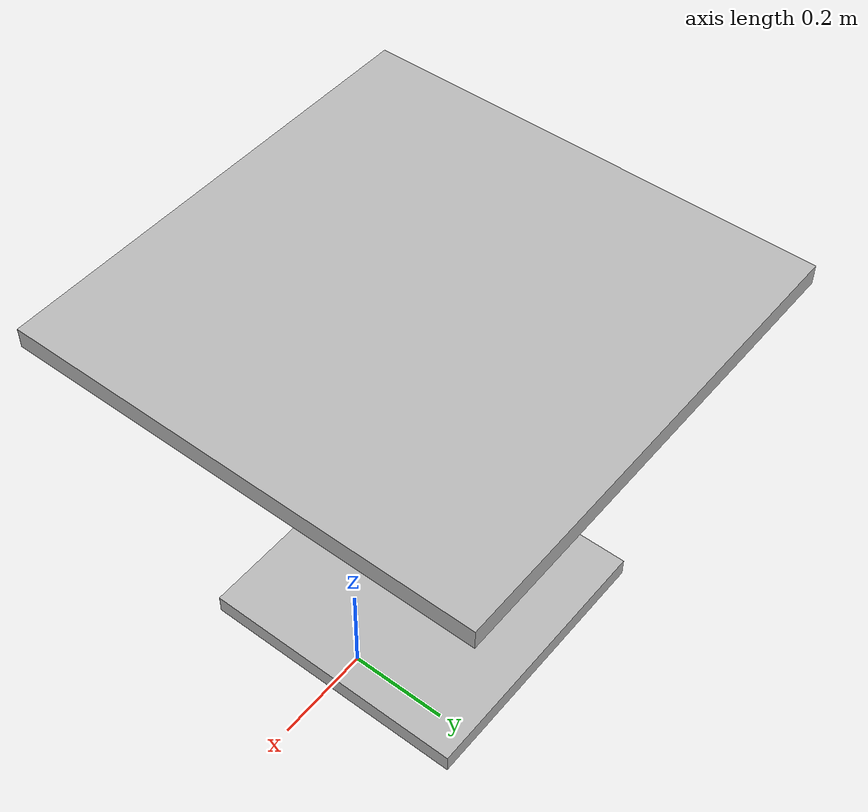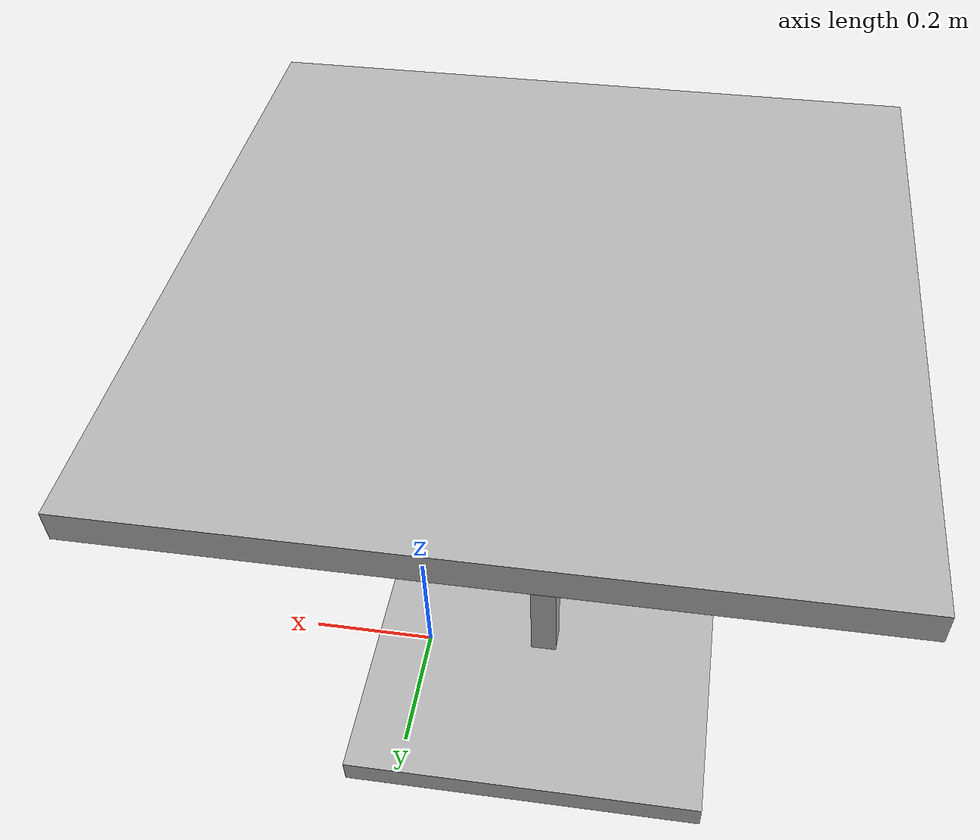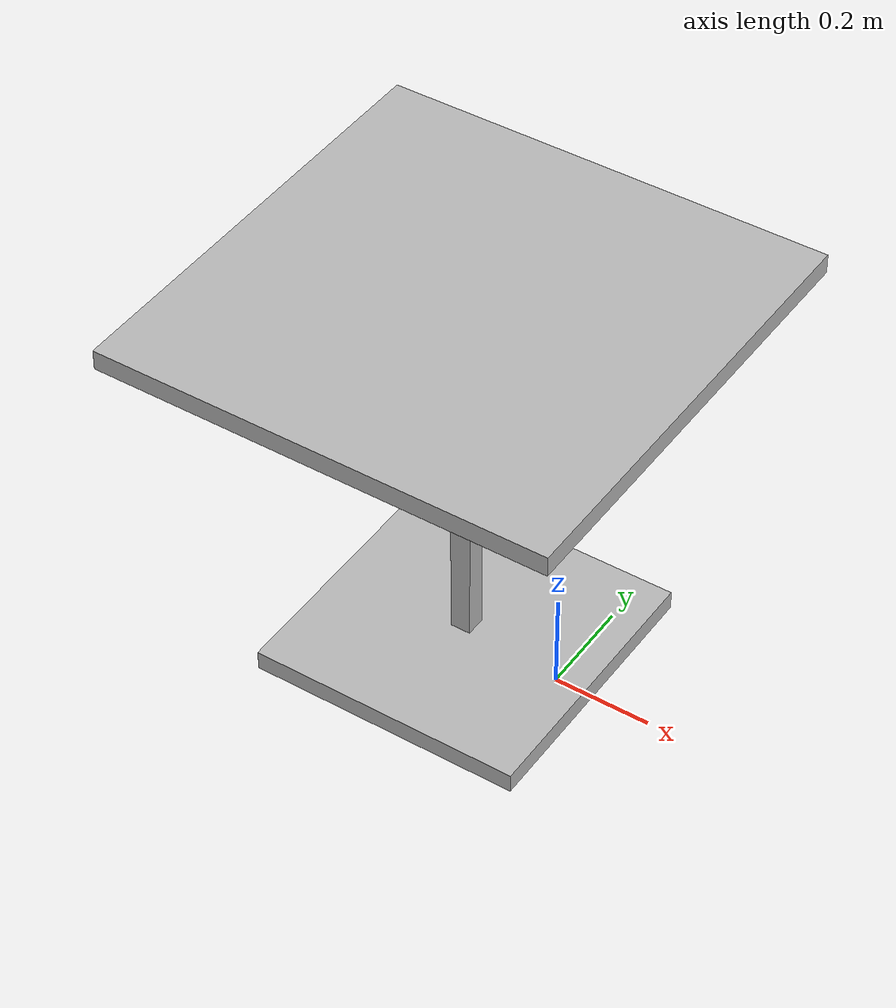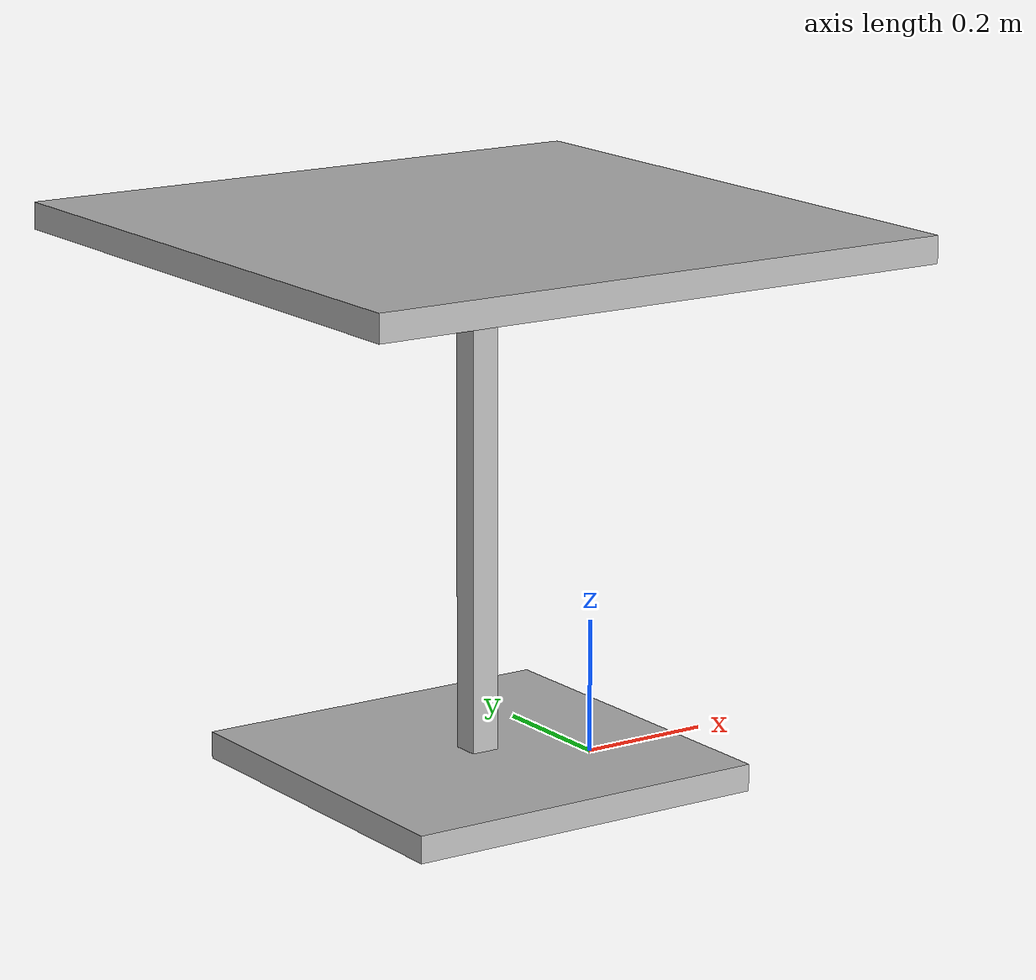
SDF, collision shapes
<?xml version="1.0" ?>
<sdf version="1.4">
  <model name="cafe_table">
    <static>true</static>
    <link name="link">
      <collision name="surface">
        <pose>-0.2 0 0.8 0 0 0</pose>
        <geometry>
          <box>
            <size>0.913 0.913 0.04</size>
          </box>
        </geometry>
      </collision>

      <collision name="column">
        <pose>-0.2 0 0.37 0 0 0</pose>
        <geometry>
          <box>
            <size>0.042 0.042 0.74</size>
          </box>
        </geometry>
      </collision>

      <collision name="base">
        <pose>-0.2 0 0.02 0 0 0</pose>
        <geometry>
          <box>
            <size>0.56 0.56 0.04</size>
          </box>
        </geometry>
      </collision>

      <visual name="visual">
	<pose>-0.2 0.0 0.0 0.0 0.0 0.0</pose>
        <geometry>
          <mesh>
            <uri>model://cafe_table/meshes/cafe_table.dae</uri>
            <scale>1.0 1.0 1.05</scale>
          </mesh>
        </geometry>
      </visual>
    </link>
  </model>
</sdf>
